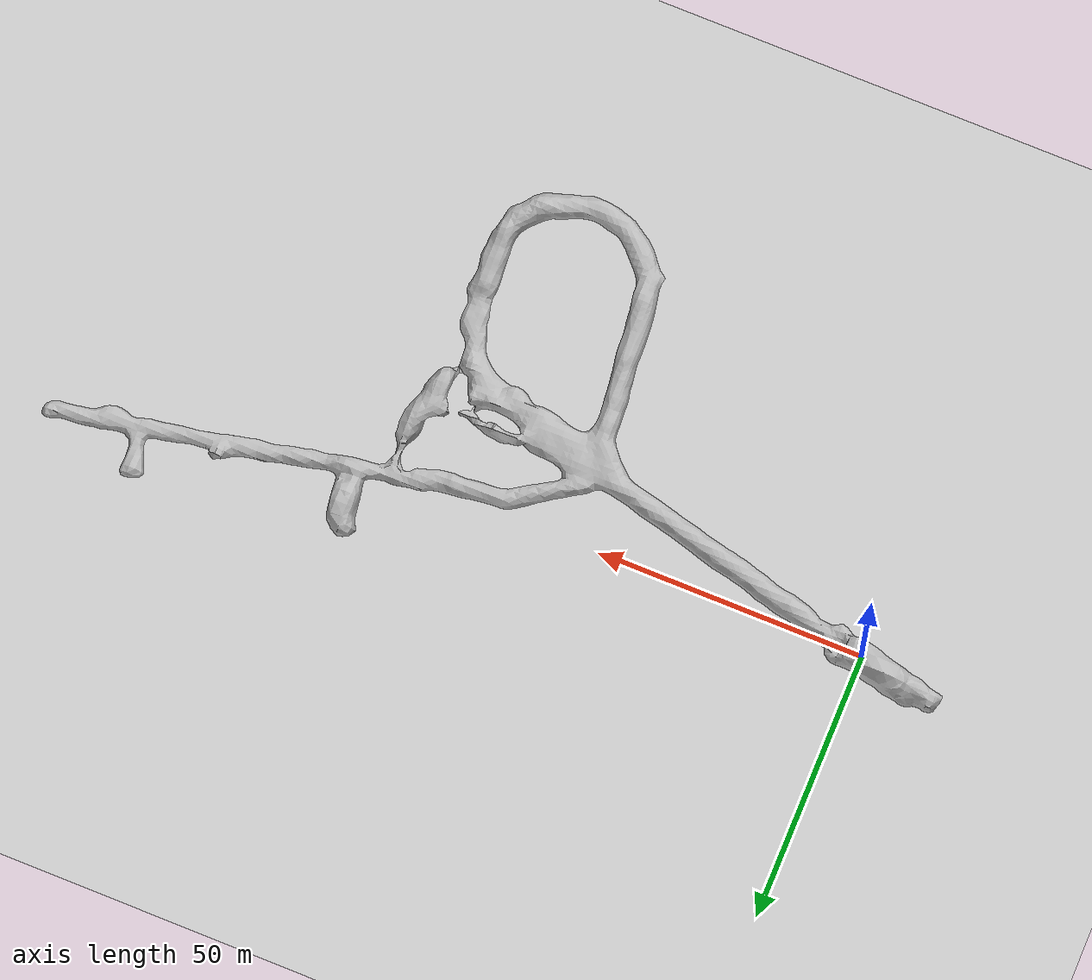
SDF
<sdf version='1.7'>
  <world name='default'>
    <light name='sun' type='directional'>
      <cast_shadows>1</cast_shadows>
      <pose>0 0 10 0 -0 0</pose>
      <diffuse>0.8 0.8 0.8 1</diffuse>
      <specular>0.2 0.2 0.2 1</specular>
      <attenuation>
        <range>1000</range>
        <constant>0.9</constant>
        <linear>0.01</linear>
        <quadratic>0.001</quadratic>
      </attenuation>
      <direction>-0.5 0.1 -0.9</direction>
      <spot>
        <inner_angle>0</inner_angle>
        <outer_angle>0</outer_angle>
        <falloff>0</falloff>
      </spot>
    </light>

    <gravity>0 0 -9.8</gravity>
    <magnetic_field>6e-06 2.3e-05 -4.2e-05</magnetic_field>
    <atmosphere type='adiabatic'/>
    <physics type='ode'>
      <max_step_size>0.001</max_step_size>
      <real_time_factor>1</real_time_factor>
      <real_time_update_rate>1000</real_time_update_rate>
    </physics>
    <scene>
      <ambient>0.4 0.4 0.4 1</ambient>
      <background>0.7 0.7 0.7 1</background>
      <shadows>1</shadows>
    </scene>
    <wind/>
    <spherical_coordinates>
      <surface_model>EARTH_WGS84</surface_model>
      <latitude_deg>0</latitude_deg>
      <longitude_deg>0</longitude_deg>
      <elevation>0</elevation>
      <heading_deg>0</heading_deg>
    </spherical_coordinates>

    <include>
      <uri>model://ground_plane</uri>
    </include>

    <include>
      <uri>model://subt</uri>
    </include>

    <plugin name="ros_interface_plugin" filename="librotors_gazebo_ros_interface_plugin.so"/>
    <plugin name="link_attacher_plugin" filename="libgazebo_ros_link_attacher.so"/>

    <gui fullscreen='0'>
      <camera name='user_camera'>
        <pose>-38.9455 4.94277 28.466 0 0.499643 -0.347801</pose>
        <view_controller>orbit</view_controller>
        <projection_type>perspective</projection_type>
      </camera>
    </gui>
  </world>
</sdf>

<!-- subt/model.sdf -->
<sdf version='1.6'>
  <model name='subt'>
    <static>true</static>
    <pose>61.6368 -14.4699 2.4575 1.5354 0 0</pose>
    <link name='link'>
      <collision name='collision'>
        <geometry>
          <mesh>
            <uri>model://subt/meshes/subt.obj</uri>
          </mesh>
        </geometry>
      </collision>
      <visual name='visual'>
        <geometry>
          <mesh>
            <uri>model://subt/meshes/subt.obj</uri>
          </mesh>
        </geometry>
      </visual>
    </link>
  </model>
</sdf>
